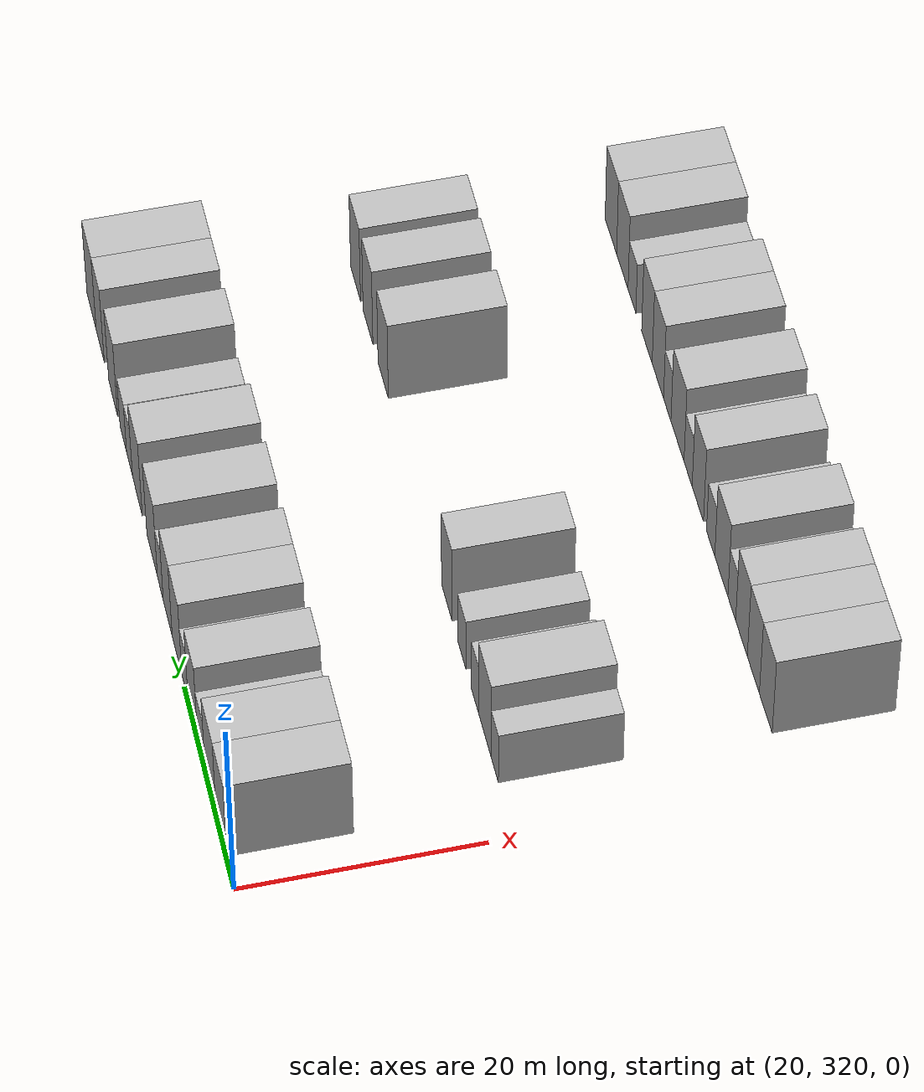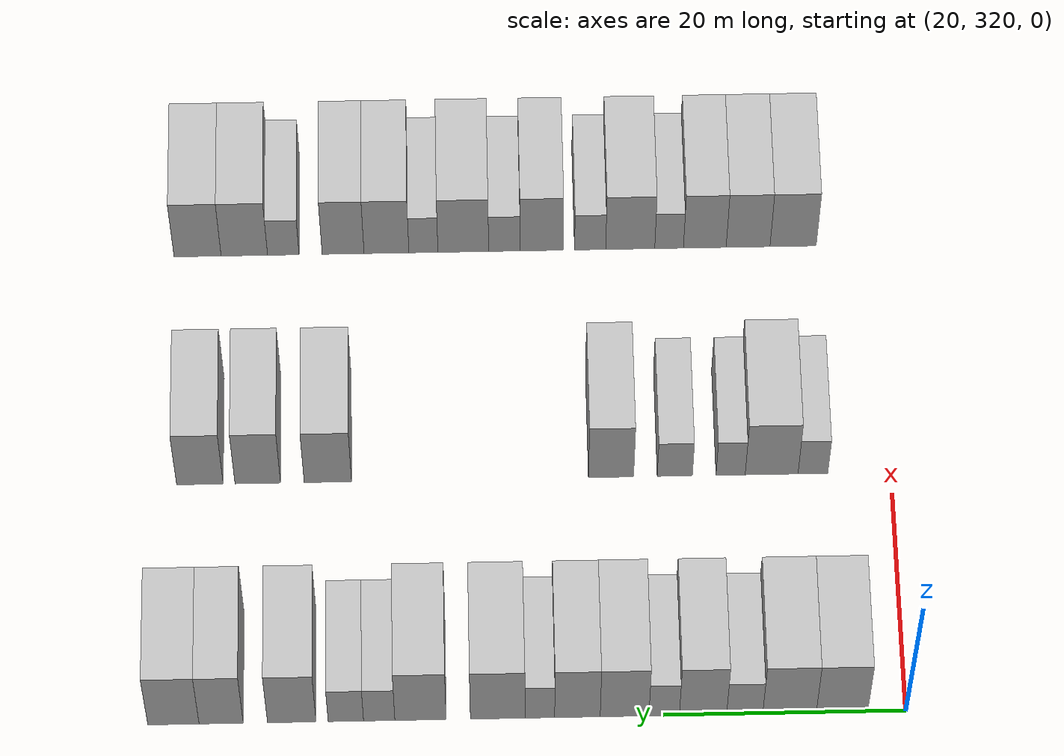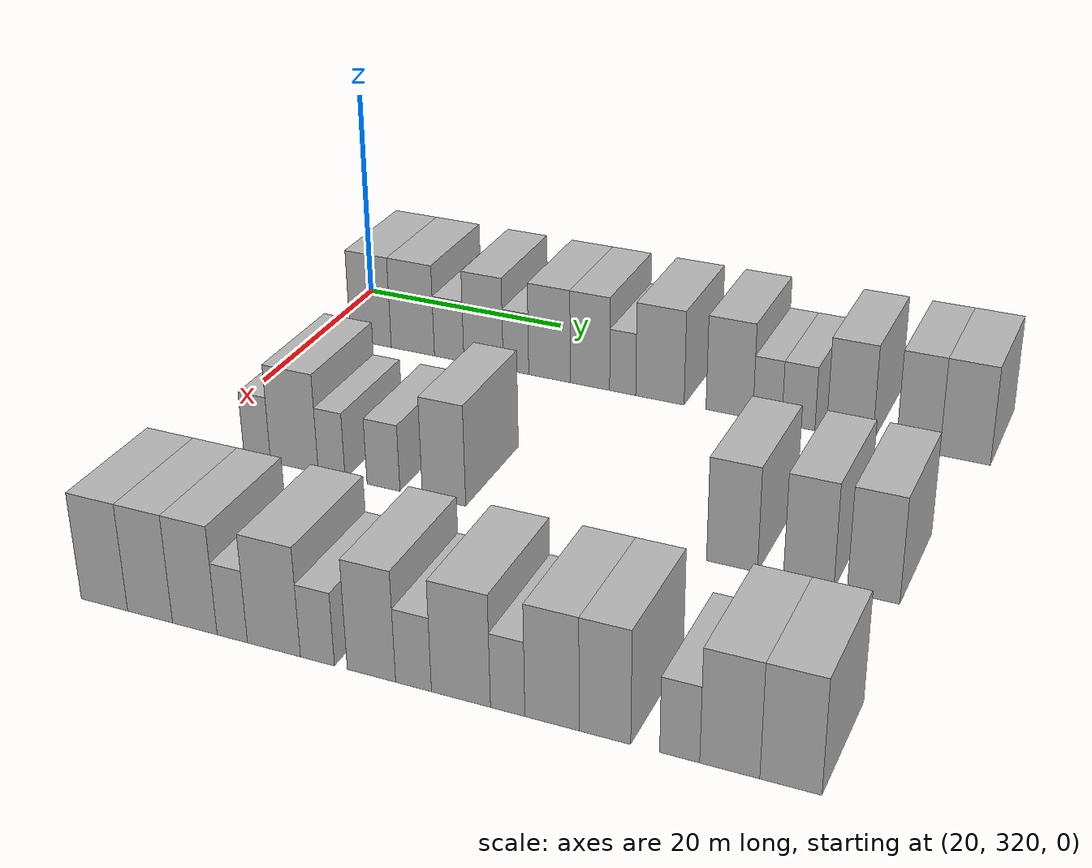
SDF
<sdf version="1.6">
 <world name="default">
  <model name="building_176">
   <static>1</static>
   <pose>25.0000 325.3029 0 0.000000 0.000000 0.000000</pose>
   <link name="link">
    <pose>0 0 4.50 0 0 0</pose>
    <collision name="collision"><geometry><box><size>10.0000 4.2367 9.0000</size></box></geometry></collision>
    <visual name="visual">
     <cast_shadows>0</cast_shadows>
     <geometry><box><size>10.0000 4.2367 9.0000</size></box></geometry>
     <material>
      <script>
       <uri>model://HANNAS_wall/materials/scripts</uri>
       <uri>model://HANNAS_wall/materials/textures</uri>
       <name>vrc/HANNAS_wall</name>
      </script>
     </material>
    </visual>
   </link>
  </model>
  <model name="building_177">
   <static>1</static>
   <pose>25.0000 329.6273 0 0.000000 0.000000 0.000000</pose>
   <link name="link">
    <pose>0 0 4.50 0 0 0</pose>
    <collision name="collision"><geometry><box><size>10.0000 4.4122 9.0000</size></box></geometry></collision>
    <visual name="visual">
     <cast_shadows>0</cast_shadows>
     <geometry><box><size>10.0000 4.4122 9.0000</size></box></geometry>
     <material>
      <script>
       <uri>model://HANNAS_wall/materials/scripts</uri>
       <uri>model://HANNAS_wall/materials/textures</uri>
       <name>vrc/HANNAS_wall</name>
      </script>
     </material>
    </visual>
   </link>
  </model>
  <model name="building_178">
   <static>1</static>
   <pose>25.0000 333.3196 0 0.000000 0.000000 0.000000</pose>
   <link name="link">
    <pose>0 0 3.00 0 0 0</pose>
    <collision name="collision"><geometry><box><size>10.0000 2.9724 6.0000</size></box></geometry></collision>
    <visual name="visual">
     <cast_shadows>0</cast_shadows>
     <geometry><box><size>10.0000 2.9724 6.0000</size></box></geometry>
     <material>
      <script>
       <uri>model://HANNAS_wall/materials/scripts</uri>
       <uri>model://HANNAS_wall/materials/textures</uri>
       <name>vrc/HANNAS_wall</name>
      </script>
     </material>
    </visual>
   </link>
  </model>
  <model name="building_179">
   <static>1</static>
   <pose>25.0000 336.7559 0 0.000000 0.000000 0.000000</pose>
   <link name="link">
    <pose>0 0 4.50 0 0 0</pose>
    <collision name="collision"><geometry><box><size>10.0000 3.9002 9.0000</size></box></geometry></collision>
    <visual name="visual">
     <cast_shadows>0</cast_shadows>
     <geometry><box><size>10.0000 3.9002 9.0000</size></box></geometry>
     <material>
      <script>
       <uri>model://HANNAS_wall/materials/scripts</uri>
       <uri>model://HANNAS_wall/materials/textures</uri>
       <name>vrc/HANNAS_wall</name>
      </script>
     </material>
    </visual>
   </link>
  </model>
  <model name="building_180">
   <static>1</static>
   <pose>25.0000 339.9572 0 0.000000 0.000000 0.000000</pose>
   <link name="link">
    <pose>0 0 3.00 0 0 0</pose>
    <collision name="collision"><geometry><box><size>10.0000 2.5024 6.0000</size></box></geometry></collision>
    <visual name="visual">
     <cast_shadows>0</cast_shadows>
     <geometry><box><size>10.0000 2.5024 6.0000</size></box></geometry>
     <material>
      <script>
       <uri>model://HANNAS_wall/materials/scripts</uri>
       <uri>model://HANNAS_wall/materials/textures</uri>
       <name>vrc/HANNAS_wall</name>
      </script>
     </material>
    </visual>
   </link>
  </model>
  <model name="building_181">
   <static>1</static>
   <pose>25.0000 343.2161 0 0.000000 0.000000 0.000000</pose>
   <link name="link">
    <pose>0 0 4.50 0 0 0</pose>
    <collision name="collision"><geometry><box><size>10.0000 4.0153 9.0000</size></box></geometry></collision>
    <visual name="visual">
     <cast_shadows>0</cast_shadows>
     <geometry><box><size>10.0000 4.0153 9.0000</size></box></geometry>
     <material>
      <script>
       <uri>model://HANNAS_wall/materials/scripts</uri>
       <uri>model://HANNAS_wall/materials/textures</uri>
       <name>vrc/HANNAS_wall</name>
      </script>
     </material>
    </visual>
   </link>
  </model>
  <model name="building_182">
   <static>1</static>
   <pose>25.0000 347.0987 0 0.000000 0.000000 0.000000</pose>
   <link name="link">
    <pose>0 0 4.50 0 0 0</pose>
    <collision name="collision"><geometry><box><size>10.0000 3.7500 9.0000</size></box></geometry></collision>
    <visual name="visual">
     <cast_shadows>0</cast_shadows>
     <geometry><box><size>10.0000 3.7500 9.0000</size></box></geometry>
     <material>
      <script>
       <uri>model://HANNAS_wall/materials/scripts</uri>
       <uri>model://HANNAS_wall/materials/textures</uri>
       <name>vrc/HANNAS_wall</name>
      </script>
     </material>
    </visual>
   </link>
  </model>
  <model name="building_183">
   <static>1</static>
   <pose>25.0000 350.1979 0 0.000000 0.000000 0.000000</pose>
   <link name="link">
    <pose>0 0 3.00 0 0 0</pose>
    <collision name="collision"><geometry><box><size>10.0000 2.4484 6.0000</size></box></geometry></collision>
    <visual name="visual">
     <cast_shadows>0</cast_shadows>
     <geometry><box><size>10.0000 2.4484 6.0000</size></box></geometry>
     <material>
      <script>
       <uri>model://HANNAS_wall/materials/scripts</uri>
       <uri>model://HANNAS_wall/materials/textures</uri>
       <name>vrc/HANNAS_wall</name>
      </script>
     </material>
    </visual>
   </link>
  </model>
  <model name="building_184">
   <static>1</static>
   <pose>25.0000 353.6634 0 0.000000 0.000000 0.000000</pose>
   <link name="link">
    <pose>0 0 4.50 0 0 0</pose>
    <collision name="collision"><geometry><box><size>10.0000 4.4824 9.0000</size></box></geometry></collision>
    <visual name="visual">
     <cast_shadows>0</cast_shadows>
     <geometry><box><size>10.0000 4.4824 9.0000</size></box></geometry>
     <material>
      <script>
       <uri>model://HANNAS_wall/materials/scripts</uri>
       <uri>model://HANNAS_wall/materials/textures</uri>
       <name>vrc/HANNAS_wall</name>
      </script>
     </material>
    </visual>
   </link>
  </model>
  <model name="building_185">
   <static>1</static>
   <pose>25.0000 360.0152 0 0.000000 0.000000 0.000000</pose>
   <link name="link">
    <pose>0 0 4.50 0 0 0</pose>
    <collision name="collision"><geometry><box><size>10.0000 4.2213 9.0000</size></box></geometry></collision>
    <visual name="visual">
     <cast_shadows>0</cast_shadows>
     <geometry><box><size>10.0000 4.2213 9.0000</size></box></geometry>
     <material>
      <script>
       <uri>model://HANNAS_wall/materials/scripts</uri>
       <uri>model://HANNAS_wall/materials/textures</uri>
       <name>vrc/HANNAS_wall</name>
      </script>
     </material>
    </visual>
   </link>
  </model>
  <model name="building_186">
   <static>1</static>
   <pose>25.0000 363.4134 0 0.000000 0.000000 0.000000</pose>
   <link name="link">
    <pose>0 0 3.00 0 0 0</pose>
    <collision name="collision"><geometry><box><size>10.0000 2.5751 6.0000</size></box></geometry></collision>
    <visual name="visual">
     <cast_shadows>0</cast_shadows>
     <geometry><box><size>10.0000 2.5751 6.0000</size></box></geometry>
     <material>
      <script>
       <uri>model://HANNAS_wall/materials/scripts</uri>
       <uri>model://HANNAS_wall/materials/textures</uri>
       <name>vrc/HANNAS_wall</name>
      </script>
     </material>
    </visual>
   </link>
  </model>
  <model name="building_187">
   <static>1</static>
   <pose>25.0000 366.1536 0 0.000000 0.000000 0.000000</pose>
   <link name="link">
    <pose>0 0 3.00 0 0 0</pose>
    <collision name="collision"><geometry><box><size>10.0000 2.9054 6.0000</size></box></geometry></collision>
    <visual name="visual">
     <cast_shadows>0</cast_shadows>
     <geometry><box><size>10.0000 2.9054 6.0000</size></box></geometry>
     <material>
      <script>
       <uri>model://HANNAS_wall/materials/scripts</uri>
       <uri>model://HANNAS_wall/materials/textures</uri>
       <name>vrc/HANNAS_wall</name>
      </script>
     </material>
    </visual>
   </link>
  </model>
  <model name="building_188">
   <static>1</static>
   <pose>25.0000 370.6013 0 0.000000 0.000000 0.000000</pose>
   <link name="link">
    <pose>0 0 4.50 0 0 0</pose>
    <collision name="collision"><geometry><box><size>10.0000 3.9900 9.0000</size></box></geometry></collision>
    <visual name="visual">
     <cast_shadows>0</cast_shadows>
     <geometry><box><size>10.0000 3.9900 9.0000</size></box></geometry>
     <material>
      <script>
       <uri>model://HANNAS_wall/materials/scripts</uri>
       <uri>model://HANNAS_wall/materials/textures</uri>
       <name>vrc/HANNAS_wall</name>
      </script>
     </material>
    </visual>
   </link>
  </model>
  <model name="building_189">
   <static>1</static>
   <pose>25.0000 376.4126 0 0.000000 0.000000 0.000000</pose>
   <link name="link">
    <pose>0 0 4.50 0 0 0</pose>
    <collision name="collision"><geometry><box><size>10.0000 3.6328 9.0000</size></box></geometry></collision>
    <visual name="visual">
     <cast_shadows>0</cast_shadows>
     <geometry><box><size>10.0000 3.6328 9.0000</size></box></geometry>
     <material>
      <script>
       <uri>model://HANNAS_wall/materials/scripts</uri>
       <uri>model://HANNAS_wall/materials/textures</uri>
       <name>vrc/HANNAS_wall</name>
      </script>
     </material>
    </visual>
   </link>
  </model>
  <model name="building_190">
   <static>1</static>
   <pose>25.0000 380.3347 0 0.000000 0.000000 0.000000</pose>
   <link name="link">
    <pose>0 0 4.50 0 0 0</pose>
    <collision name="collision"><geometry><box><size>10.0000 4.2114 9.0000</size></box></geometry></collision>
    <visual name="visual">
     <cast_shadows>0</cast_shadows>
     <geometry><box><size>10.0000 4.2114 9.0000</size></box></geometry>
     <material>
      <script>
       <uri>model://HANNAS_wall/materials/scripts</uri>
       <uri>model://HANNAS_wall/materials/textures</uri>
       <name>vrc/HANNAS_wall</name>
      </script>
     </material>
    </visual>
   </link>
  </model>
  <model name="building_375">
   <static>1</static>
   <pose>47.0000 326.6675 0 0.000000 0.000000 0.000000</pose>
   <link name="link">
    <pose>0 0 3.00 0 0 0</pose>
    <collision name="collision"><geometry><box><size>10.0000 2.5119 6.0000</size></box></geometry></collision>
    <visual name="visual">
     <cast_shadows>0</cast_shadows>
     <geometry><box><size>10.0000 2.5119 6.0000</size></box></geometry>
     <material>
      <script>
       <uri>model://HANNAS_wall/materials/scripts</uri>
       <uri>model://HANNAS_wall/materials/textures</uri>
       <name>vrc/HANNAS_wall</name>
      </script>
     </material>
    </visual>
   </link>
  </model>
  <model name="building_376">
   <static>1</static>
   <pose>47.0000 330.1559 0 0.000000 0.000000 0.000000</pose>
   <link name="link">
    <pose>0 0 4.50 0 0 0</pose>
    <collision name="collision"><geometry><box><size>10.0000 4.4648 9.0000</size></box></geometry></collision>
    <visual name="visual">
     <cast_shadows>0</cast_shadows>
     <geometry><box><size>10.0000 4.4648 9.0000</size></box></geometry>
     <material>
      <script>
       <uri>model://HANNAS_wall/materials/scripts</uri>
       <uri>model://HANNAS_wall/materials/textures</uri>
       <name>vrc/HANNAS_wall</name>
      </script>
     </material>
    </visual>
   </link>
  </model>
  <model name="building_377">
   <static>1</static>
   <pose>47.0000 333.6206 0 0.000000 0.000000 0.000000</pose>
   <link name="link">
    <pose>0 0 3.00 0 0 0</pose>
    <collision name="collision"><geometry><box><size>10.0000 2.4645 6.0000</size></box></geometry></collision>
    <visual name="visual">
     <cast_shadows>0</cast_shadows>
     <geometry><box><size>10.0000 2.4645 6.0000</size></box></geometry>
     <material>
      <script>
       <uri>model://HANNAS_wall/materials/scripts</uri>
       <uri>model://HANNAS_wall/materials/textures</uri>
       <name>vrc/HANNAS_wall</name>
      </script>
     </material>
    </visual>
   </link>
  </model>
  <model name="building_378">
   <static>1</static>
   <pose>47.0000 338.3340 0 0.000000 0.000000 0.000000</pose>
   <link name="link">
    <pose>0 0 3.00 0 0 0</pose>
    <collision name="collision"><geometry><box><size>10.0000 2.9623 6.0000</size></box></geometry></collision>
    <visual name="visual">
     <cast_shadows>0</cast_shadows>
     <geometry><box><size>10.0000 2.9623 6.0000</size></box></geometry>
     <material>
      <script>
       <uri>model://HANNAS_wall/materials/scripts</uri>
       <uri>model://HANNAS_wall/materials/textures</uri>
       <name>vrc/HANNAS_wall</name>
      </script>
     </material>
    </visual>
   </link>
  </model>
  <model name="building_379">
   <static>1</static>
   <pose>47.0000 343.7207 0 0.000000 0.000000 0.000000</pose>
   <link name="link">
    <pose>0 0 4.50 0 0 0</pose>
    <collision name="collision"><geometry><box><size>10.0000 3.8110 9.0000</size></box></geometry></collision>
    <visual name="visual">
     <cast_shadows>0</cast_shadows>
     <geometry><box><size>10.0000 3.8110 9.0000</size></box></geometry>
     <material>
      <script>
       <uri>model://HANNAS_wall/materials/scripts</uri>
       <uri>model://HANNAS_wall/materials/textures</uri>
       <name>vrc/HANNAS_wall</name>
      </script>
     </material>
    </visual>
   </link>
  </model>
  <model name="building_380">
   <static>1</static>
   <pose>47.0000 367.6133 0 0.000000 0.000000 0.000000</pose>
   <link name="link">
    <pose>0 0 4.50 0 0 0</pose>
    <collision name="collision"><geometry><box><size>10.0000 3.9914 9.0000</size></box></geometry></collision>
    <visual name="visual">
     <cast_shadows>0</cast_shadows>
     <geometry><box><size>10.0000 3.9914 9.0000</size></box></geometry>
     <material>
      <script>
       <uri>model://HANNAS_wall/materials/scripts</uri>
       <uri>model://HANNAS_wall/materials/textures</uri>
       <name>vrc/HANNAS_wall</name>
      </script>
     </material>
    </visual>
   </link>
  </model>
  <model name="building_381">
   <static>1</static>
   <pose>47.0000 373.5285 0 0.000000 0.000000 0.000000</pose>
   <link name="link">
    <pose>0 0 4.50 0 0 0</pose>
    <collision name="collision"><geometry><box><size>10.0000 3.8389 9.0000</size></box></geometry></collision>
    <visual name="visual">
     <cast_shadows>0</cast_shadows>
     <geometry><box><size>10.0000 3.8389 9.0000</size></box></geometry>
     <material>
      <script>
       <uri>model://HANNAS_wall/materials/scripts</uri>
       <uri>model://HANNAS_wall/materials/textures</uri>
       <name>vrc/HANNAS_wall</name>
      </script>
     </material>
    </visual>
   </link>
  </model>
  <model name="building_382">
   <static>1</static>
   <pose>47.0000 378.4087 0 0.000000 0.000000 0.000000</pose>
   <link name="link">
    <pose>0 0 4.50 0 0 0</pose>
    <collision name="collision"><geometry><box><size>10.0000 3.9216 9.0000</size></box></geometry></collision>
    <visual name="visual">
     <cast_shadows>0</cast_shadows>
     <geometry><box><size>10.0000 3.9216 9.0000</size></box></geometry>
     <material>
      <script>
       <uri>model://HANNAS_wall/materials/scripts</uri>
       <uri>model://HANNAS_wall/materials/textures</uri>
       <name>vrc/HANNAS_wall</name>
      </script>
     </material>
    </visual>
   </link>
  </model>
  <model name="building_549">
   <static>1</static>
   <pose>69.0000 327.3515 0 0.000000 0.000000 0.000000</pose>
   <link name="link">
    <pose>0 0 4.50 0 0 0</pose>
    <collision name="collision"><geometry><box><size>10.0000 3.9974 9.0000</size></box></geometry></collision>
    <visual name="visual">
     <cast_shadows>0</cast_shadows>
     <geometry><box><size>10.0000 3.9974 9.0000</size></box></geometry>
     <material>
      <script>
       <uri>model://HANNAS_wall/materials/scripts</uri>
       <uri>model://HANNAS_wall/materials/textures</uri>
       <name>vrc/HANNAS_wall</name>
      </script>
     </material>
    </visual>
   </link>
  </model>
  <model name="building_550">
   <static>1</static>
   <pose>69.0000 331.2489 0 0.000000 0.000000 0.000000</pose>
   <link name="link">
    <pose>0 0 4.50 0 0 0</pose>
    <collision name="collision"><geometry><box><size>10.0000 3.7974 9.0000</size></box></geometry></collision>
    <visual name="visual">
     <cast_shadows>0</cast_shadows>
     <geometry><box><size>10.0000 3.7974 9.0000</size></box></geometry>
     <material>
      <script>
       <uri>model://HANNAS_wall/materials/scripts</uri>
       <uri>model://HANNAS_wall/materials/textures</uri>
       <name>vrc/HANNAS_wall</name>
      </script>
     </material>
    </visual>
   </link>
  </model>
  <model name="building_551">
   <static>1</static>
   <pose>69.0000 334.9976 0 0.000000 0.000000 0.000000</pose>
   <link name="link">
    <pose>0 0 4.50 0 0 0</pose>
    <collision name="collision"><geometry><box><size>10.0000 3.7001 9.0000</size></box></geometry></collision>
    <visual name="visual">
     <cast_shadows>0</cast_shadows>
     <geometry><box><size>10.0000 3.7001 9.0000</size></box></geometry>
     <material>
      <script>
       <uri>model://HANNAS_wall/materials/scripts</uri>
       <uri>model://HANNAS_wall/materials/textures</uri>
       <name>vrc/HANNAS_wall</name>
      </script>
     </material>
    </visual>
   </link>
  </model>
  <model name="building_552">
   <static>1</static>
   <pose>69.0000 338.0884 0 0.000000 0.000000 0.000000</pose>
   <link name="link">
    <pose>0 0 3.00 0 0 0</pose>
    <collision name="collision"><geometry><box><size>10.0000 2.4815 6.0000</size></box></geometry></collision>
    <visual name="visual">
     <cast_shadows>0</cast_shadows>
     <geometry><box><size>10.0000 2.4815 6.0000</size></box></geometry>
     <material>
      <script>
       <uri>model://HANNAS_wall/materials/scripts</uri>
       <uri>model://HANNAS_wall/materials/textures</uri>
       <name>vrc/HANNAS_wall</name>
      </script>
     </material>
    </visual>
   </link>
  </model>
  <model name="building_553">
   <static>1</static>
   <pose>69.0000 341.4541 0 0.000000 0.000000 0.000000</pose>
   <link name="link">
    <pose>0 0 4.50 0 0 0</pose>
    <collision name="collision"><geometry><box><size>10.0000 4.2499 9.0000</size></box></geometry></collision>
    <visual name="visual">
     <cast_shadows>0</cast_shadows>
     <geometry><box><size>10.0000 4.2499 9.0000</size></box></geometry>
     <material>
      <script>
       <uri>model://HANNAS_wall/materials/scripts</uri>
       <uri>model://HANNAS_wall/materials/textures</uri>
       <name>vrc/HANNAS_wall</name>
      </script>
     </material>
    </visual>
   </link>
  </model>
  <model name="building_554">
   <static>1</static>
   <pose>69.0000 344.9214 0 0.000000 0.000000 0.000000</pose>
   <link name="link">
    <pose>0 0 3.00 0 0 0</pose>
    <collision name="collision"><geometry><box><size>10.0000 2.6848 6.0000</size></box></geometry></collision>
    <visual name="visual">
     <cast_shadows>0</cast_shadows>
     <geometry><box><size>10.0000 2.6848 6.0000</size></box></geometry>
     <material>
      <script>
       <uri>model://HANNAS_wall/materials/scripts</uri>
       <uri>model://HANNAS_wall/materials/textures</uri>
       <name>vrc/HANNAS_wall</name>
      </script>
     </material>
    </visual>
   </link>
  </model>
  <model name="building_555">
   <static>1</static>
   <pose>69.0000 349.1263 0 0.000000 0.000000 0.000000</pose>
   <link name="link">
    <pose>0 0 4.50 0 0 0</pose>
    <collision name="collision"><geometry><box><size>10.0000 3.7250 9.0000</size></box></geometry></collision>
    <visual name="visual">
     <cast_shadows>0</cast_shadows>
     <geometry><box><size>10.0000 3.7250 9.0000</size></box></geometry>
     <material>
      <script>
       <uri>model://HANNAS_wall/materials/scripts</uri>
       <uri>model://HANNAS_wall/materials/textures</uri>
       <name>vrc/HANNAS_wall</name>
      </script>
     </material>
    </visual>
   </link>
  </model>
  <model name="building_556">
   <static>1</static>
   <pose>69.0000 352.3457 0 0.000000 0.000000 0.000000</pose>
   <link name="link">
    <pose>0 0 3.00 0 0 0</pose>
    <collision name="collision"><geometry><box><size>10.0000 2.7136 6.0000</size></box></geometry></collision>
    <visual name="visual">
     <cast_shadows>0</cast_shadows>
     <geometry><box><size>10.0000 2.7136 6.0000</size></box></geometry>
     <material>
      <script>
       <uri>model://HANNAS_wall/materials/scripts</uri>
       <uri>model://HANNAS_wall/materials/textures</uri>
       <name>vrc/HANNAS_wall</name>
      </script>
     </material>
    </visual>
   </link>
  </model>
  <model name="building_557">
   <static>1</static>
   <pose>69.0000 355.8936 0 0.000000 0.000000 0.000000</pose>
   <link name="link">
    <pose>0 0 4.50 0 0 0</pose>
    <collision name="collision"><geometry><box><size>10.0000 4.3823 9.0000</size></box></geometry></collision>
    <visual name="visual">
     <cast_shadows>0</cast_shadows>
     <geometry><box><size>10.0000 4.3823 9.0000</size></box></geometry>
     <material>
      <script>
       <uri>model://HANNAS_wall/materials/scripts</uri>
       <uri>model://HANNAS_wall/materials/textures</uri>
       <name>vrc/HANNAS_wall</name>
      </script>
     </material>
    </visual>
   </link>
  </model>
  <model name="building_558">
   <static>1</static>
   <pose>69.0000 359.3390 0 0.000000 0.000000 0.000000</pose>
   <link name="link">
    <pose>0 0 3.00 0 0 0</pose>
    <collision name="collision"><geometry><box><size>10.0000 2.5085 6.0000</size></box></geometry></collision>
    <visual name="visual">
     <cast_shadows>0</cast_shadows>
     <geometry><box><size>10.0000 2.5085 6.0000</size></box></geometry>
     <material>
      <script>
       <uri>model://HANNAS_wall/materials/scripts</uri>
       <uri>model://HANNAS_wall/materials/textures</uri>
       <name>vrc/HANNAS_wall</name>
      </script>
     </material>
    </visual>
   </link>
  </model>
  <model name="building_559">
   <static>1</static>
   <pose>69.0000 362.5326 0 0.000000 0.000000 0.000000</pose>
   <link name="link">
    <pose>0 0 4.50 0 0 0</pose>
    <collision name="collision"><geometry><box><size>10.0000 3.8786 9.0000</size></box></geometry></collision>
    <visual name="visual">
     <cast_shadows>0</cast_shadows>
     <geometry><box><size>10.0000 3.8786 9.0000</size></box></geometry>
     <material>
      <script>
       <uri>model://HANNAS_wall/materials/scripts</uri>
       <uri>model://HANNAS_wall/materials/textures</uri>
       <name>vrc/HANNAS_wall</name>
      </script>
     </material>
    </visual>
   </link>
  </model>
  <model name="building_560">
   <static>1</static>
   <pose>69.0000 366.2817 0 0.000000 0.000000 0.000000</pose>
   <link name="link">
    <pose>0 0 4.50 0 0 0</pose>
    <collision name="collision"><geometry><box><size>10.0000 3.6197 9.0000</size></box></geometry></collision>
    <visual name="visual">
     <cast_shadows>0</cast_shadows>
     <geometry><box><size>10.0000 3.6197 9.0000</size></box></geometry>
     <material>
      <script>
       <uri>model://HANNAS_wall/materials/scripts</uri>
       <uri>model://HANNAS_wall/materials/textures</uri>
       <name>vrc/HANNAS_wall</name>
      </script>
     </material>
    </visual>
   </link>
  </model>
  <model name="building_561">
   <static>1</static>
   <pose>69.0000 371.4518 0 0.000000 0.000000 0.000000</pose>
   <link name="link">
    <pose>0 0 3.00 0 0 0</pose>
    <collision name="collision"><geometry><box><size>10.0000 2.7205 6.0000</size></box></geometry></collision>
    <visual name="visual">
     <cast_shadows>0</cast_shadows>
     <geometry><box><size>10.0000 2.7205 6.0000</size></box></geometry>
     <material>
      <script>
       <uri>model://HANNAS_wall/materials/scripts</uri>
       <uri>model://HANNAS_wall/materials/textures</uri>
       <name>vrc/HANNAS_wall</name>
      </script>
     </material>
    </visual>
   </link>
  </model>
  <model name="building_562">
   <static>1</static>
   <pose>69.0000 374.8202 0 0.000000 0.000000 0.000000</pose>
   <link name="link">
    <pose>0 0 4.50 0 0 0</pose>
    <collision name="collision"><geometry><box><size>10.0000 4.0164 9.0000</size></box></geometry></collision>
    <visual name="visual">
     <cast_shadows>0</cast_shadows>
     <geometry><box><size>10.0000 4.0164 9.0000</size></box></geometry>
     <material>
      <script>
       <uri>model://HANNAS_wall/materials/scripts</uri>
       <uri>model://HANNAS_wall/materials/textures</uri>
       <name>vrc/HANNAS_wall</name>
      </script>
     </material>
    </visual>
   </link>
  </model>
  <model name="building_563">
   <static>1</static>
   <pose>69.0000 378.8585 0 0.000000 0.000000 0.000000</pose>
   <link name="link">
    <pose>0 0 4.50 0 0 0</pose>
    <collision name="collision"><geometry><box><size>10.0000 4.0601 9.0000</size></box></geometry></collision>
    <visual name="visual">
     <cast_shadows>0</cast_shadows>
     <geometry><box><size>10.0000 4.0601 9.0000</size></box></geometry>
     <material>
      <script>
       <uri>model://HANNAS_wall/materials/scripts</uri>
       <uri>model://HANNAS_wall/materials/textures</uri>
       <name>vrc/HANNAS_wall</name>
      </script>
     </material>
    </visual>
   </link>
  </model>
 </world>
</sdf>
